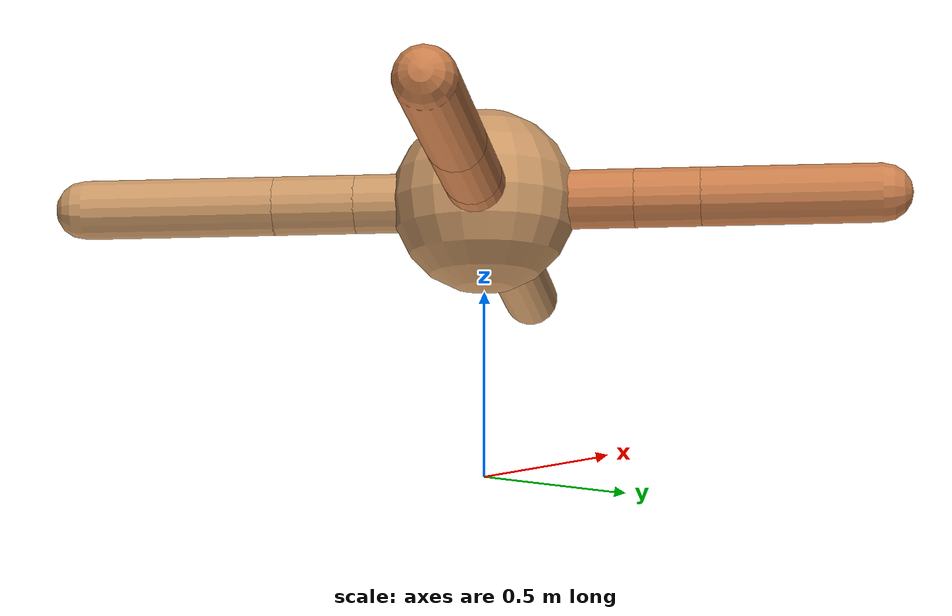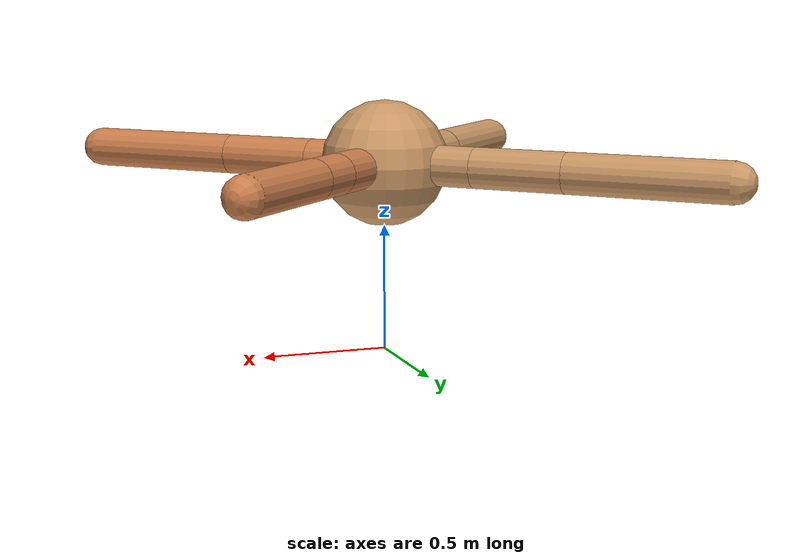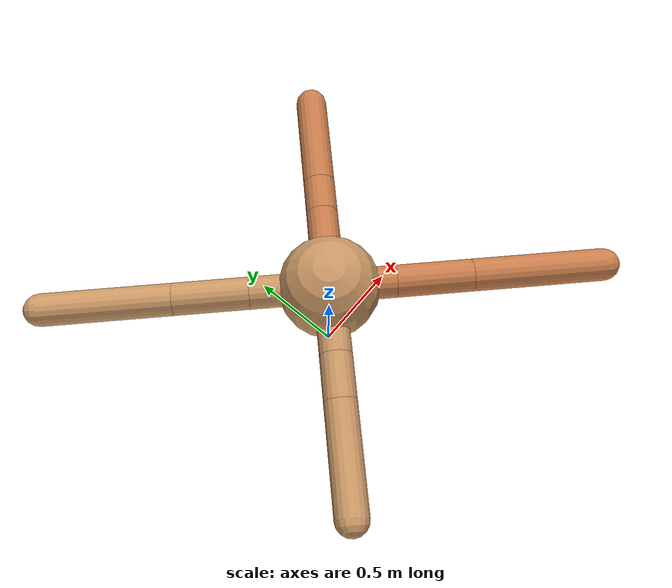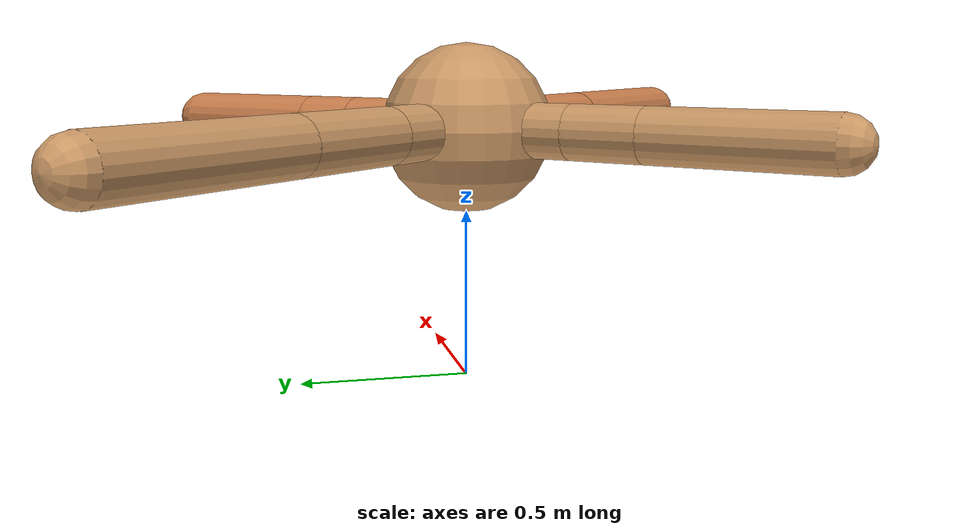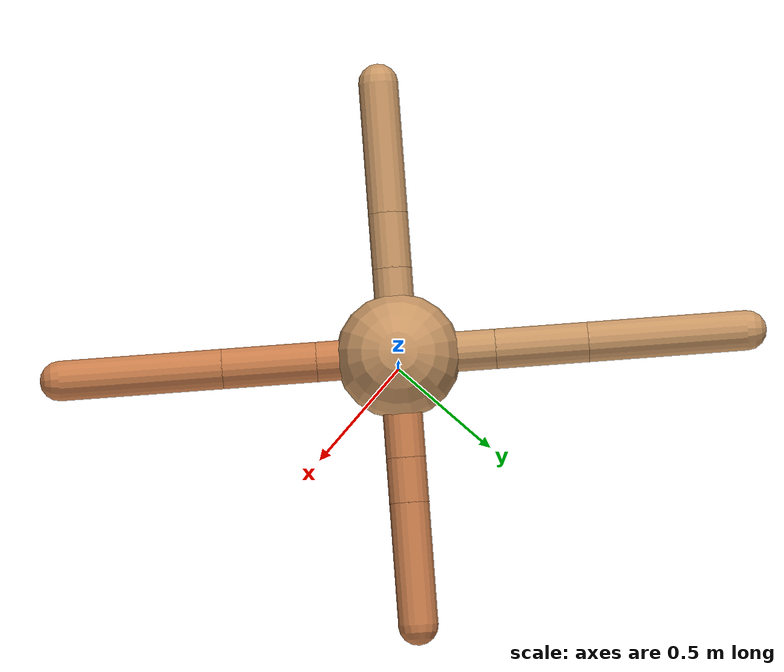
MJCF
<mujoco model="ant">
  <compiler angle="degree" coordinate="local" inertiafromgeom="true" />
  <option integrator="RK4" timestep="0.01" />
  <custom>
    <numeric data="0.0 0.0 0.55 1.0 0.0 0.0 0.0 0.0 1.0 0.0 -1.0 0.0 -1.0 0.0 1.0" name="init_qpos" />
  </custom>
  <default>
    <joint armature="1" damping="1" limited="true" />
    <geom conaffinity="0" condim="3" density="5.0" friction="1.5 0.1 0.1" margin="0.01" rgba="0.8 0.6 0.4 1" />
  </default>
  <worldbody>
    <body name="torso" pos="0 0 0.75">
      <geom name="torso_geom" pos="0 0 0" size="0.25" type="sphere" />

      <body name="front_left_leg" pos="0 0 0">
        <geom fromto="0.0 0.0 0.0 0.2872127292607678 0.2872127292607678 0.0" name="aux_1_geom" size="0.08" type="capsule" rgba=".8 .5 .3 1" />
        <body name="aux_1" pos="0.2872127292607678 0.2872127292607678 0.0">
          <joint axis="0 0 1" name="hip_1" pos="0.0 0.0 0.0" range="-40 40" type="hinge" />
          <geom fromto="0.0 0.0 0.0 0.12673963257067905 0.12673963257067905 0.0" name="left_leg_geom" size="0.08" type="capsule" rgba=".8 .5 .3 1" />
          <body pos="0.12673963257067905 0.12673963257067905 0.0" name="front_left_foot">
            <joint axis="-1 1 0" name="ankle_1" pos="0.0 0.0 0.0" range="30 100" type="hinge" />
            <geom fromto="0.0 0.0 0.0 0.3437507660151141 0.3437507660151141 0.0" name="left_ankle_geom" size="0.08" type="capsule" rgba=".8 .5 .3 1" />
          </body>
        </body>
      </body>
      <body name="front_right_leg" pos="0 0 0">
        <geom fromto="0.0 0.0 0.0 -0.2729321442488836 0.2729321442488836 0.0" name="aux_2_geom" size="0.08" type="capsule" />
        <body name="aux_2" pos="-0.2729321442488836 0.2729321442488836 0.0">
          <joint axis="0 0 1" name="hip_2" pos="0.0 0.0 0.0" range="-40 40" type="hinge" />
          <geom fromto="0.0 0.0 0.0 -0.2609067176214124 0.2609067176214124 0.0" name="right_leg_geom" size="0.08" type="capsule" />
          <body pos="-0.2609067176214124 0.2609067176214124 0.0" name="front_right_foot">
            <joint axis="1 1 0" name="ankle_2" pos="0.0 0.0 0.0" range="-100 -30" type="hinge" />
            <geom fromto="0.0 0.0 0.0 -0.4486677372327605 0.4486677372327605 0.0" name="right_ankle_geom" size="0.08" type="capsule" />
          </body>
        </body>
      </body>
      <body name="left_back_leg" pos="0 0 0">
        <geom fromto="0.0 0.0 0.0 -0.2459263803926821 -0.2459263803926821 0.0" name="aux_3_geom" size="0.08" type="capsule" />
        <body name="aux_3" pos="-0.2459263803926821 -0.2459263803926821 0.0">
          <joint axis="0 0 1" name="hip_3" pos="0.0 0.0 0.0" range="-40 40" type="hinge" />
          <geom fromto="0.0 0.0 0.0 -0.15680089333048414 -0.15680089333048414 0.0" name="back_leg_geom" size="0.08" type="capsule" />
          <body pos="-0.15680089333048414 -0.15680089333048414 0.0" name="left_back_foot">
            <joint axis="-1 1 0" name="ankle_3" pos="0.0 0.0 0.0" range="-100 -30" type="hinge" />
            <geom fromto="0.0 0.0 0.0 -0.36982714853332654 -0.36982714853332654 0.0" name="third_ankle_geom" size="0.08" type="capsule" />
          </body>
        </body>
      </body>
      <body name="right_back_leg" pos="0 0 0">
        <geom fromto="0.0 0.0 0.0 0.2301145838143359 -0.2301145838143359 0.0" name="aux_4_geom" size="0.08" type="capsule" rgba=".8 .5 .3 1" />
        <body name="aux_4" pos="0.2301145838143359 -0.2301145838143359 0.0">
          <joint axis="0 0 1" name="hip_4" pos="0.0 0.0 0.0" range="-40 40" type="hinge" />
          <geom fromto="0.0 0.0 0.0 0.26548686300595564 -0.26548686300595564 0.0" name="rightback_leg_geom" size="0.08" type="capsule" rgba=".8 .5 .3 1" />
          <body pos="0.26548686300595564 -0.26548686300595564 0.0" name="right_back_foot">
            <joint axis="1 1 0" name="ankle_4" pos="0.0 0.0 0.0" range="30 100" type="hinge" />
            <geom fromto="0.0 0.0 0.0 0.4585908836208956 -0.4585908836208956 0.0" name="fourth_ankle_geom" size="0.08" type="capsule" rgba=".8 .5 .3 1" />
          </body>
        </body>
      </body>
    </body>
  </worldbody>
  <actuator>
    <motor ctrllimited="true" ctrlrange="-1.0 1.0" joint="hip_4" gear="150" />
    <motor ctrllimited="true" ctrlrange="-1.0 1.0" joint="ankle_4" gear="150" />
    <motor ctrllimited="true" ctrlrange="-1.0 1.0" joint="hip_1" gear="150" />
    <motor ctrllimited="true" ctrlrange="-1.0 1.0" joint="ankle_1" gear="150" />
    <motor ctrllimited="true" ctrlrange="-1.0 1.0" joint="hip_2" gear="150" />
    <motor ctrllimited="true" ctrlrange="-1.0 1.0" joint="ankle_2" gear="150" />
    <motor ctrllimited="true" ctrlrange="-1.0 1.0" joint="hip_3" gear="150" />
    <motor ctrllimited="true" ctrlrange="-1.0 1.0" joint="ankle_3" gear="150" />
  </actuator>
</mujoco>
